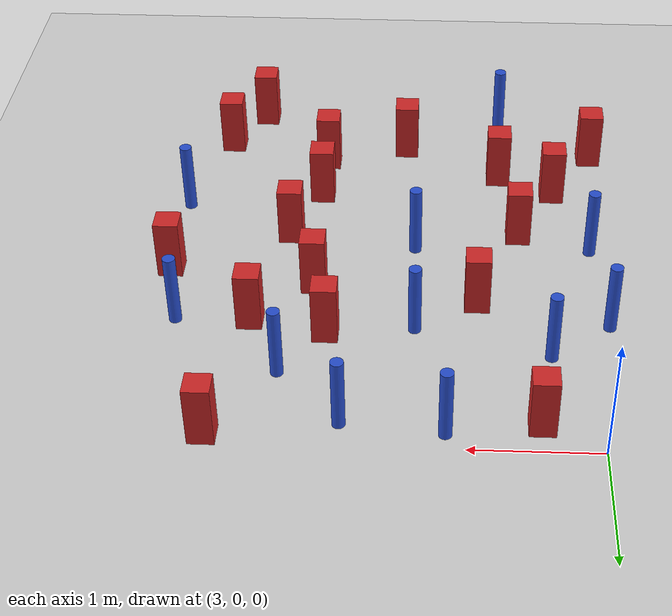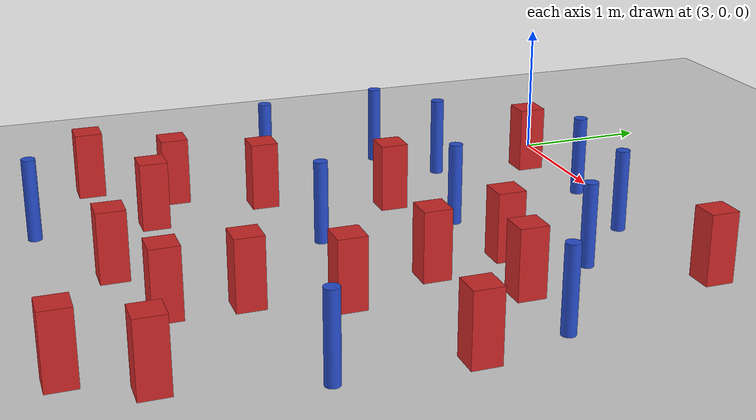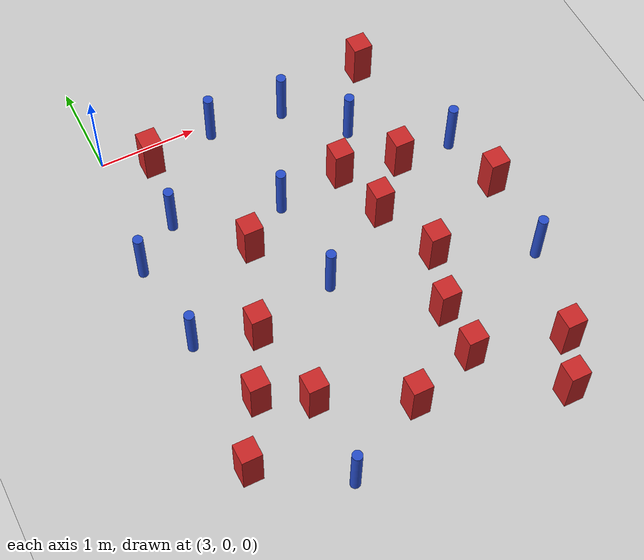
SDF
<sdf version="1.6">
 <world name="default">
  <model name="ground_plane">
   <static>1</static>
   <link name="link">
    <collision name="collision">
     <geometry><plane><normal>0 0 1</normal><size>100 100</size></plane></geometry>
     <surface><friction><ode><mu>100</mu><mu2>50</mu2></ode></friction></surface>
    </collision>
    <visual name="visual">
     <cast_shadows>0</cast_shadows>
     <geometry><plane><normal>0 0 1</normal><size>100 100</size></plane></geometry>
     <material>
      <ambient>1.0 1.0 1.0 1.0</ambient>
      <diffuse>0.8 0.8 0.8 1.0</diffuse>
      <specular>0.01 0.01 0.01 1.000000</specular>
     </material>
    </visual>
   </link>
  </model>
  <model name="square_post_obstacle6">
   <static>true</static>
   <pose>3.90744752582 -1.59957269851 1.91545236811e-07 -7.35059704564e-06 1.12565212e-07 2.39332434364e-05</pose>
   <link name="link">
    <pose>0 0 0.25 0 -0 0</pose>
    <inertial>
     <mass>100</mass>
     <inertia>
      <ixx>0.166667</ixx>
      <ixy>0</ixy>
      <ixz>0</ixz>
      <iyy>0.166667</iyy>
      <iyz>0</iyz>
      <izz>0.166667</izz>
     </inertia>
    </inertial>
    <collision name="collision"><geometry><box><size>.2 .2 .5</size></box></geometry></collision>
    <visual name="visual">
     <geometry><box><size>.2 .2 .5</size></box></geometry>
     <material>
      <script><name>Gazebo/Red</name><uri>file://media/materials/scripts/gazebo.material</uri></script>
     </material>
    </visual>
   </link>
  </model>
  <model name="square_post_obstacle13">
   <static>true</static>
   <pose>6.10127495856 -3.80343116019 1.91545236811e-07 -7.35059704564e-06 1.12565212e-07 2.39332434364e-05</pose>
   <link name="link">
    <pose>0 0 0.25 0 -0 0</pose>
    <inertial>
     <mass>100</mass>
     <inertia>
      <ixx>0.166667</ixx>
      <ixy>0</ixy>
      <ixz>0</ixz>
      <iyy>0.166667</iyy>
      <iyz>0</iyz>
      <izz>0.166667</izz>
     </inertia>
    </inertial>
    <collision name="collision"><geometry><box><size>.2 .2 .5</size></box></geometry></collision>
    <visual name="visual">
     <geometry><box><size>.2 .2 .5</size></box></geometry>
     <material>
      <script><name>Gazebo/Red</name><uri>file://media/materials/scripts/gazebo.material</uri></script>
     </material>
    </visual>
   </link>
  </model>
  <model name="pole_obstacle22">
   <static>true</static>
   <pose>3.34542982329 -0.992490725536 7.38925637345e-09 -8.471706928e-08 1.24976765191e-08 -1.74513093012e-07</pose>
   <link name="link">
    <pose>0 0 0.3 0 -0 0</pose>
    <inertial>
     <mass>1</mass>
     <inertia><ixx>0.145833</ixx><ixy>0</ixy><ixz>0</ixz><iyy>0.145833</iyy><iyz>0</iyz><izz>0.125</izz></inertia>
    </inertial>
    <collision name="collision">
     <geometry><cylinder><radius>0.05</radius><length>.6</length></cylinder></geometry>
    </collision>
    <visual name="visual">
     <geometry><cylinder><radius>0.05</radius><length>.6</length></cylinder></geometry>
     <material>
      <script><name>Gazebo/Blue</name><uri>file://media/materials/scripts/gazebo.material</uri></script>
     </material>
    </visual>
   </link>
  </model>
  <model name="pole_obstacle35">
   <static>true</static>
   <pose>4.14205065839 -0.144217028738 7.38925637345e-09 -8.471706928e-08 1.24976765188e-08 -1.74513093011e-07</pose>
   <link name="link">
    <pose>0 0 0.3 0 -0 0</pose>
    <inertial>
     <mass>1</mass>
     <inertia><ixx>0.145833</ixx><ixy>0</ixy><ixz>0</ixz><iyy>0.145833</iyy><iyz>0</iyz><izz>0.125</izz></inertia>
    </inertial>
    <collision name="collision">
     <geometry><cylinder><radius>0.05</radius><length>.6</length></cylinder></geometry>
    </collision>
    <visual name="visual">
     <geometry><cylinder><radius>0.05</radius><length>.6</length></cylinder></geometry>
     <material>
      <script><name>Gazebo/Blue</name><uri>file://media/materials/scripts/gazebo.material</uri></script>
     </material>
    </visual>
   </link>
  </model>
  <model name="square_post_obstacle44">
   <static>true</static>
   <pose>3.25651356782 -3.10686308579 1.91545236811e-07 -7.35059704564e-06 1.12565212e-07 2.39332434364e-05</pose>
   <link name="link">
    <pose>0 0 0.25 0 -0 0</pose>
    <inertial>
     <mass>100</mass>
     <inertia>
      <ixx>0.166667</ixx>
      <ixy>0</ixy>
      <ixz>0</ixz>
      <iyy>0.166667</iyy>
      <iyz>0</iyz>
      <izz>0.166667</izz>
     </inertia>
    </inertial>
    <collision name="collision"><geometry><box><size>.2 .2 .5</size></box></geometry></collision>
    <visual name="visual">
     <geometry><box><size>.2 .2 .5</size></box></geometry>
     <material>
      <script><name>Gazebo/Red</name><uri>file://media/materials/scripts/gazebo.material</uri></script>
     </material>
    </visual>
   </link>
  </model>
  <model name="square_post_obstacle57">
   <static>true</static>
   <pose>3.71561857062 -3.34809296636 1.91545236811e-07 -7.35059704564e-06 1.12565212e-07 2.39332434364e-05</pose>
   <link name="link">
    <pose>0 0 0.25 0 -0 0</pose>
    <inertial>
     <mass>100</mass>
     <inertia>
      <ixx>0.166667</ixx>
      <ixy>0</ixy>
      <ixz>0</ixz>
      <iyy>0.166667</iyy>
      <iyz>0</iyz>
      <izz>0.166667</izz>
     </inertia>
    </inertial>
    <collision name="collision"><geometry><box><size>.2 .2 .5</size></box></geometry></collision>
    <visual name="visual">
     <geometry><box><size>.2 .2 .5</size></box></geometry>
     <material>
      <script><name>Gazebo/Red</name><uri>file://media/materials/scripts/gazebo.material</uri></script>
     </material>
    </visual>
   </link>
  </model>
  <model name="square_post_obstacle67">
   <static>true</static>
   <pose>5.07744827272 -1.19955849043 1.91545236811e-07 -7.35059704564e-06 1.12565212e-07 2.39332434364e-05</pose>
   <link name="link">
    <pose>0 0 0.25 0 -0 0</pose>
    <inertial>
     <mass>100</mass>
     <inertia>
      <ixx>0.166667</ixx>
      <ixy>0</ixy>
      <ixz>0</ixz>
      <iyy>0.166667</iyy>
      <iyz>0</iyz>
      <izz>0.166667</izz>
     </inertia>
    </inertial>
    <collision name="collision"><geometry><box><size>.2 .2 .5</size></box></geometry></collision>
    <visual name="visual">
     <geometry><box><size>.2 .2 .5</size></box></geometry>
     <material>
      <script><name>Gazebo/Red</name><uri>file://media/materials/scripts/gazebo.material</uri></script>
     </material>
    </visual>
   </link>
  </model>
  <model name="square_post_obstacle73">
   <static>true</static>
   <pose>6.38977286289 -1.96521949778 1.91545236811e-07 -7.35059704564e-06 1.12565212e-07 2.39332434364e-05</pose>
   <link name="link">
    <pose>0 0 0.25 0 -0 0</pose>
    <inertial>
     <mass>100</mass>
     <inertia>
      <ixx>0.166667</ixx>
      <ixy>0</ixy>
      <ixz>0</ixz>
      <iyy>0.166667</iyy>
      <iyz>0</iyz>
      <izz>0.166667</izz>
     </inertia>
    </inertial>
    <collision name="collision"><geometry><box><size>.2 .2 .5</size></box></geometry></collision>
    <visual name="visual">
     <geometry><box><size>.2 .2 .5</size></box></geometry>
     <material>
      <script><name>Gazebo/Red</name><uri>file://media/materials/scripts/gazebo.material</uri></script>
     </material>
    </visual>
   </link>
  </model>
  <model name="pole_obstacle76">
   <static>true</static>
   <pose>4.39181495859 -1.27941585076 7.38925637345e-09 -8.471706928e-08 1.24976765134e-08 -1.74513093015e-07</pose>
   <link name="link">
    <pose>0 0 0.3 0 -0 0</pose>
    <inertial>
     <mass>1</mass>
     <inertia><ixx>0.145833</ixx><ixy>0</ixy><ixz>0</ixz><iyy>0.145833</iyy><iyz>0</iyz><izz>0.125</izz></inertia>
    </inertial>
    <collision name="collision">
     <geometry><cylinder><radius>0.05</radius><length>.6</length></cylinder></geometry>
    </collision>
    <visual name="visual">
     <geometry><cylinder><radius>0.05</radius><length>.6</length></cylinder></geometry>
     <material>
      <script><name>Gazebo/Blue</name><uri>file://media/materials/scripts/gazebo.material</uri></script>
     </material>
    </visual>
   </link>
  </model>
  <model name="pole_obstacle90">
   <static>true</static>
   <pose>6.36649241427 -2.84622281165 7.38925637345e-09 -8.47170692798e-08 1.24976764937e-08 -1.74513093023e-07</pose>
   <link name="link">
    <pose>0 0 0.3 0 -0 0</pose>
    <inertial>
     <mass>1</mass>
     <inertia><ixx>0.145833</ixx><ixy>0</ixy><ixz>0</ixz><iyy>0.145833</iyy><iyz>0</iyz><izz>0.125</izz></inertia>
    </inertial>
    <collision name="collision">
     <geometry><cylinder><radius>0.05</radius><length>.6</length></cylinder></geometry>
    </collision>
    <visual name="visual">
     <geometry><cylinder><radius>0.05</radius><length>.6</length></cylinder></geometry>
     <material>
      <script><name>Gazebo/Blue</name><uri>file://media/materials/scripts/gazebo.material</uri></script>
     </material>
    </visual>
   </link>
  </model>
  <model name="square_post_obstacle104">
   <static>true</static>
   <pose>5.84405503091 -4.27012074093 1.91545236811e-07 -7.35059704564e-06 1.12565212e-07 2.39332434364e-05</pose>
   <link name="link">
    <pose>0 0 0.25 0 -0 0</pose>
    <inertial>
     <mass>100</mass>
     <inertia>
      <ixx>0.166667</ixx>
      <ixy>0</ixy>
      <ixz>0</ixz>
      <iyy>0.166667</iyy>
      <iyz>0</iyz>
      <izz>0.166667</izz>
     </inertia>
    </inertial>
    <collision name="collision"><geometry><box><size>.2 .2 .5</size></box></geometry></collision>
    <visual name="visual">
     <geometry><box><size>.2 .2 .5</size></box></geometry>
     <material>
      <script><name>Gazebo/Red</name><uri>file://media/materials/scripts/gazebo.material</uri></script>
     </material>
    </visual>
   </link>
  </model>
  <model name="square_post_obstacle108">
   <static>true</static>
   <pose>3.4484123092 -0.247951691455 1.91545236811e-07 -7.35059704564e-06 1.12565212e-07 2.39332434364e-05</pose>
   <link name="link">
    <pose>0 0 0.25 0 -0 0</pose>
    <inertial>
     <mass>100</mass>
     <inertia>
      <ixx>0.166667</ixx>
      <ixy>0</ixy>
      <ixz>0</ixz>
      <iyy>0.166667</iyy>
      <iyz>0</iyz>
      <izz>0.166667</izz>
     </inertia>
    </inertial>
    <collision name="collision"><geometry><box><size>.2 .2 .5</size></box></geometry></collision>
    <visual name="visual">
     <geometry><box><size>.2 .2 .5</size></box></geometry>
     <material>
      <script><name>Gazebo/Red</name><uri>file://media/materials/scripts/gazebo.material</uri></script>
     </material>
    </visual>
   </link>
  </model>
  <model name="pole_obstacle138">
   <static>true</static>
   <pose>5.40717876437 -0.745963642939 7.38925637345e-09 -8.47170692799e-08 1.24976765038e-08 -1.74513093018e-07</pose>
   <link name="link">
    <pose>0 0 0.3 0 -0 0</pose>
    <inertial>
     <mass>1</mass>
     <inertia><ixx>0.145833</ixx><ixy>0</ixy><ixz>0</ixz><iyy>0.145833</iyy><iyz>0</iyz><izz>0.125</izz></inertia>
    </inertial>
    <collision name="collision">
     <geometry><cylinder><radius>0.05</radius><length>.6</length></cylinder></geometry>
    </collision>
    <visual name="visual">
     <geometry><cylinder><radius>0.05</radius><length>.6</length></cylinder></geometry>
     <material>
      <script><name>Gazebo/Blue</name><uri>file://media/materials/scripts/gazebo.material</uri></script>
     </material>
    </visual>
   </link>
  </model>
  <model name="pole_obstacle147">
   <static>true</static>
   <pose>6.26183893967 -1.33099187983 7.38925637345e-09 -8.471706928e-08 1.24976765134e-08 -1.74513093015e-07</pose>
   <link name="link">
    <pose>0 0 0.3 0 -0 0</pose>
    <inertial>
     <mass>1</mass>
     <inertia><ixx>0.145833</ixx><ixy>0</ixy><ixz>0</ixz><iyy>0.145833</iyy><iyz>0</iyz><izz>0.125</izz></inertia>
    </inertial>
    <collision name="collision">
     <geometry><cylinder><radius>0.05</radius><length>.6</length></cylinder></geometry>
    </collision>
    <visual name="visual">
     <geometry><cylinder><radius>0.05</radius><length>.6</length></cylinder></geometry>
     <material>
      <script><name>Gazebo/Blue</name><uri>file://media/materials/scripts/gazebo.material</uri></script>
     </material>
    </visual>
   </link>
  </model>
  <model name="pole_obstacle155">
   <static>true</static>
   <pose>4.90849619738 -0.221024347678 7.38925637345e-09 -8.471706928e-08 1.24976765089e-08 -1.74513093017e-07</pose>
   <link name="link">
    <pose>0 0 0.3 0 -0 0</pose>
    <inertial>
     <mass>1</mass>
     <inertia><ixx>0.145833</ixx><ixy>0</ixy><ixz>0</ixz><iyy>0.145833</iyy><iyz>0</iyz><izz>0.125</izz></inertia>
    </inertial>
    <collision name="collision">
     <geometry><cylinder><radius>0.05</radius><length>.6</length></cylinder></geometry>
    </collision>
    <visual name="visual">
     <geometry><cylinder><radius>0.05</radius><length>.6</length></cylinder></geometry>
     <material>
      <script><name>Gazebo/Blue</name><uri>file://media/materials/scripts/gazebo.material</uri></script>
     </material>
    </visual>
   </link>
  </model>
  <model name="pole_obstacle156">
   <static>true</static>
   <pose>4.41335565793 -2.29824711931 7.38925637345e-09 -8.47170692798e-08 1.24976764937e-08 -1.74513093023e-07</pose>
   <link name="link">
    <pose>0 0 0.3 0 -0 0</pose>
    <inertial>
     <mass>1</mass>
     <inertia><ixx>0.145833</ixx><ixy>0</ixy><ixz>0</ixz><iyy>0.145833</iyy><iyz>0</iyz><izz>0.125</izz></inertia>
    </inertial>
    <collision name="collision">
     <geometry><cylinder><radius>0.05</radius><length>.6</length></cylinder></geometry>
    </collision>
    <visual name="visual">
     <geometry><cylinder><radius>0.05</radius><length>.6</length></cylinder></geometry>
     <material>
      <script><name>Gazebo/Blue</name><uri>file://media/materials/scripts/gazebo.material</uri></script>
     </material>
    </visual>
   </link>
  </model>
  <model name="square_post_obstacle149">
   <static>true</static>
   <pose>5.21644847671 -3.55737723265 1.91545236811e-07 -7.35059704564e-06 1.12565212e-07 2.39332434364e-05</pose>
   <link name="link">
    <pose>0 0 0.25 0 -0 0</pose>
    <inertial>
     <mass>100</mass>
     <inertia>
      <ixx>0.166667</ixx>
      <ixy>0</ixy>
      <ixz>0</ixz>
      <iyy>0.166667</iyy>
      <iyz>0</iyz>
      <izz>0.166667</izz>
     </inertia>
    </inertial>
    <collision name="collision"><geometry><box><size>.2 .2 .5</size></box></geometry></collision>
    <visual name="visual">
     <geometry><box><size>.2 .2 .5</size></box></geometry>
     <material>
      <script><name>Gazebo/Red</name><uri>file://media/materials/scripts/gazebo.material</uri></script>
     </material>
    </visual>
   </link>
  </model>
  <model name="square_post_obstacle154">
   <static>true</static>
   <pose>5.8696665567 -0.0782182562446 1.91545236811e-07 -7.35059704564e-06 1.12565212e-07 2.39332434364e-05</pose>
   <link name="link">
    <pose>0 0 0.25 0 -0 0</pose>
    <inertial>
     <mass>100</mass>
     <inertia>
      <ixx>0.166667</ixx>
      <ixy>0</ixy>
      <ixz>0</ixz>
      <iyy>0.166667</iyy>
      <iyz>0</iyz>
      <izz>0.166667</izz>
     </inertia>
    </inertial>
    <collision name="collision"><geometry><box><size>.2 .2 .5</size></box></geometry></collision>
    <visual name="visual">
     <geometry><box><size>.2 .2 .5</size></box></geometry>
     <material>
      <script><name>Gazebo/Red</name><uri>file://media/materials/scripts/gazebo.material</uri></script>
     </material>
    </visual>
   </link>
  </model>
  <model name="square_post_obstacle156">
   <static>true</static>
   <pose>5.21216876009 -1.78693397391 1.91545236811e-07 -7.35059704564e-06 1.12565212e-07 2.39332434364e-05</pose>
   <link name="link">
    <pose>0 0 0.25 0 -0 0</pose>
    <inertial>
     <mass>100</mass>
     <inertia>
      <ixx>0.166667</ixx>
      <ixy>0</ixy>
      <ixz>0</ixz>
      <iyy>0.166667</iyy>
      <iyz>0</iyz>
      <izz>0.166667</izz>
     </inertia>
    </inertial>
    <collision name="collision"><geometry><box><size>.2 .2 .5</size></box></geometry></collision>
    <visual name="visual">
     <geometry><box><size>.2 .2 .5</size></box></geometry>
     <material>
      <script><name>Gazebo/Red</name><uri>file://media/materials/scripts/gazebo.material</uri></script>
     </material>
    </visual>
   </link>
  </model>
  <model name="pole_obstacle165">
   <static>true</static>
   <pose>2.97595620634 -2.31019599099 7.38925637345e-09 -8.47170692798e-08 1.24976764939e-08 -1.74513093025e-07</pose>
   <link name="link">
    <pose>0 0 0.3 0 -0 0</pose>
    <inertial>
     <mass>1</mass>
     <inertia><ixx>0.145833</ixx><ixy>0</ixy><ixz>0</ixz><iyy>0.145833</iyy><iyz>0</iyz><izz>0.125</izz></inertia>
    </inertial>
    <collision name="collision">
     <geometry><cylinder><radius>0.05</radius><length>.6</length></cylinder></geometry>
    </collision>
    <visual name="visual">
     <geometry><cylinder><radius>0.05</radius><length>.6</length></cylinder></geometry>
     <material>
      <script><name>Gazebo/Blue</name><uri>file://media/materials/scripts/gazebo.material</uri></script>
     </material>
    </visual>
   </link>
  </model>
  <model name="square_post_obstacle165">
   <static>true</static>
   <pose>5.67505183685 -1.33007924592 1.91545236811e-07 -7.35059704564e-06 1.12565212e-07 2.39332434364e-05</pose>
   <link name="link">
    <pose>0 0 0.25 0 -0 0</pose>
    <inertial>
     <mass>100</mass>
     <inertia>
      <ixx>0.166667</ixx>
      <ixy>0</ixy>
      <ixz>0</ixz>
      <iyy>0.166667</iyy>
      <iyz>0</iyz>
      <izz>0.166667</izz>
     </inertia>
    </inertial>
    <collision name="collision"><geometry><box><size>.2 .2 .5</size></box></geometry></collision>
    <visual name="visual">
     <geometry><box><size>.2 .2 .5</size></box></geometry>
     <material>
      <script><name>Gazebo/Red</name><uri>file://media/materials/scripts/gazebo.material</uri></script>
     </material>
    </visual>
   </link>
  </model>
  <model name="pole_obstacle183">
   <static>true</static>
   <pose>2.87870146302 -1.35860693438 7.38925637345e-09 -8.471706928e-08 1.24976765152e-08 -1.74513093012e-07</pose>
   <link name="link">
    <pose>0 0 0.3 0 -0 0</pose>
    <inertial>
     <mass>1</mass>
     <inertia><ixx>0.145833</ixx><ixy>0</ixy><ixz>0</ixz><iyy>0.145833</iyy><iyz>0</iyz><izz>0.125</izz></inertia>
    </inertial>
    <collision name="collision">
     <geometry><cylinder><radius>0.05</radius><length>.6</length></cylinder></geometry>
    </collision>
    <visual name="visual">
     <geometry><cylinder><radius>0.05</radius><length>.6</length></cylinder></geometry>
     <material>
      <script><name>Gazebo/Blue</name><uri>file://media/materials/scripts/gazebo.material</uri></script>
     </material>
    </visual>
   </link>
  </model>
  <model name="square_post_obstacle174">
   <static>true</static>
   <pose>3.56270115249 -2.49704911658 1.91545236811e-07 -7.35059704564e-06 1.12565212e-07 2.39332434364e-05</pose>
   <link name="link">
    <pose>0 0 0.25 0 -0 0</pose>
    <inertial>
     <mass>100</mass>
     <inertia>
      <ixx>0.166667</ixx>
      <ixy>0</ixy>
      <ixz>0</ixz>
      <iyy>0.166667</iyy>
      <iyz>0</iyz>
      <izz>0.166667</izz>
     </inertia>
    </inertial>
    <collision name="collision"><geometry><box><size>.2 .2 .5</size></box></geometry></collision>
    <visual name="visual">
     <geometry><box><size>.2 .2 .5</size></box></geometry>
     <material>
      <script><name>Gazebo/Red</name><uri>file://media/materials/scripts/gazebo.material</uri></script>
     </material>
    </visual>
   </link>
  </model>
  <model name="square_post_obstacle196">
   <static>true</static>
   <pose>5.23365624943 -3.03956663754 1.91545236811e-07 -7.35059704564e-06 1.12565212e-07 2.39332434364e-05</pose>
   <link name="link">
    <pose>0 0 0.25 0 -0 0</pose>
    <inertial>
     <mass>100</mass>
     <inertia>
      <ixx>0.166667</ixx>
      <ixy>0</ixy>
      <ixz>0</ixz>
      <iyy>0.166667</iyy>
      <iyz>0</iyz>
      <izz>0.166667</izz>
     </inertia>
    </inertial>
    <collision name="collision"><geometry><box><size>.2 .2 .5</size></box></geometry></collision>
    <visual name="visual">
     <geometry><box><size>.2 .2 .5</size></box></geometry>
     <material>
      <script><name>Gazebo/Red</name><uri>file://media/materials/scripts/gazebo.material</uri></script>
     </material>
    </visual>
   </link>
  </model>
  <model name="pole_obstacle190">
   <static>true</static>
   <pose>3.6978180372 -4.18981836678 7.38925637345e-09 -8.47170692798e-08 1.24976765033e-08 -1.74513093019e-07</pose>
   <link name="link">
    <pose>0 0 0.3 0 -0 0</pose>
    <inertial>
     <mass>1</mass>
     <inertia><ixx>0.145833</ixx><ixy>0</ixy><ixz>0</ixz><iyy>0.145833</iyy><iyz>0</iyz><izz>0.125</izz></inertia>
    </inertial>
    <collision name="collision">
     <geometry><cylinder><radius>0.05</radius><length>.6</length></cylinder></geometry>
    </collision>
    <visual name="visual">
     <geometry><cylinder><radius>0.05</radius><length>.6</length></cylinder></geometry>
     <material>
      <script><name>Gazebo/Blue</name><uri>file://media/materials/scripts/gazebo.material</uri></script>
     </material>
    </visual>
   </link>
  </model>
  <model name="square_post_obstacle208">
   <static>true</static>
   <pose>4.52914459229 -3.77122465084 1.91545236811e-07 -7.35059704564e-06 1.12565212e-07 2.39332434364e-05</pose>
   <link name="link">
    <pose>0 0 0.25 0 -0 0</pose>
    <inertial>
     <mass>100</mass>
     <inertia>
      <ixx>0.166667</ixx>
      <ixy>0</ixy>
      <ixz>0</ixz>
      <iyy>0.166667</iyy>
      <iyz>0</iyz>
      <izz>0.166667</izz>
     </inertia>
    </inertial>
    <collision name="collision"><geometry><box><size>.2 .2 .5</size></box></geometry></collision>
    <visual name="visual">
     <geometry><box><size>.2 .2 .5</size></box></geometry>
     <material>
      <script><name>Gazebo/Red</name><uri>file://media/materials/scripts/gazebo.material</uri></script>
     </material>
    </visual>
   </link>
  </model>
  <model name="square_post_obstacle230">
   <static>true</static>
   <pose>2.90232105216 -3.6892469169 1.91545236811e-07 -7.35059704564e-06 1.12565212e-07 2.39332434364e-05</pose>
   <link name="link">
    <pose>0 0 0.25 0 -0 0</pose>
    <inertial>
     <mass>100</mass>
     <inertia>
      <ixx>0.166667</ixx>
      <ixy>0</ixy>
      <ixz>0</ixz>
      <iyy>0.166667</iyy>
      <iyz>0</iyz>
      <izz>0.166667</izz>
     </inertia>
    </inertial>
    <collision name="collision"><geometry><box><size>.2 .2 .5</size></box></geometry></collision>
    <visual name="visual">
     <geometry><box><size>.2 .2 .5</size></box></geometry>
     <material>
      <script><name>Gazebo/Red</name><uri>file://media/materials/scripts/gazebo.material</uri></script>
     </material>
    </visual>
   </link>
  </model>
  <model name="square_post_obstacle233">
   <static>true</static>
   <pose>5.45357561662 -2.44835821982 1.91545236811e-07 -7.35059704564e-06 1.12565212e-07 2.39332434364e-05</pose>
   <link name="link">
    <pose>0 0 0.25 0 -0 0</pose>
    <inertial>
     <mass>100</mass>
     <inertia>
      <ixx>0.166667</ixx>
      <ixy>0</ixy>
      <ixz>0</ixz>
      <iyy>0.166667</iyy>
      <iyz>0</iyz>
      <izz>0.166667</izz>
     </inertia>
    </inertial>
    <collision name="collision"><geometry><box><size>.2 .2 .5</size></box></geometry></collision>
    <visual name="visual">
     <geometry><box><size>.2 .2 .5</size></box></geometry>
     <material>
      <script><name>Gazebo/Red</name><uri>file://media/materials/scripts/gazebo.material</uri></script>
     </material>
    </visual>
   </link>
  </model>
 </world>
</sdf>
